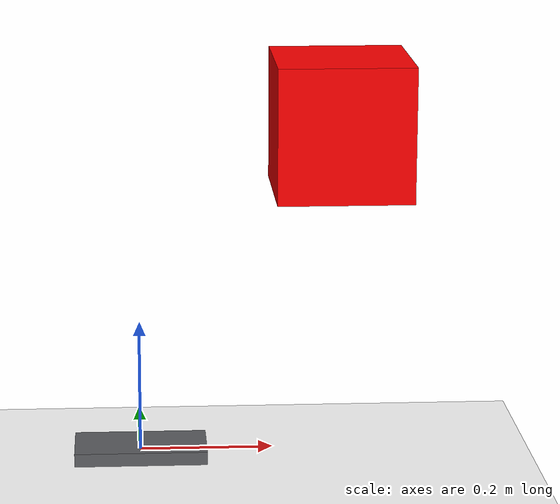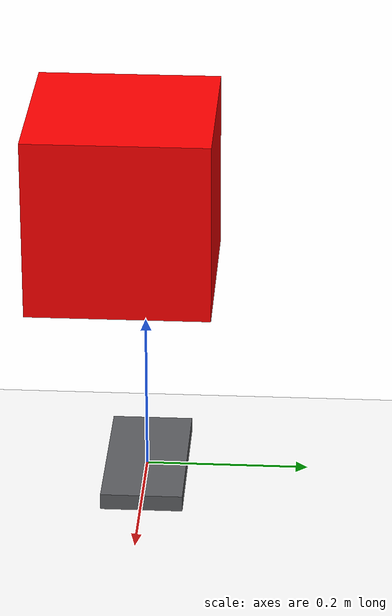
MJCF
<mujoco model="robot">
  <option timestep="0.001" gravity="0 0 -9.81"/>
  <compiler autolimits="true"/>
  <worldbody>
    <light name="top" pos="0 0 1"/>
    <body name="floor" pos="0 0 -0.1">
      <geom size="5.0 5.0 0.02" rgba="1 1 1 1" type="box"/>
    </body>
    <body name="box1" pos="0.3 0 0.5">
      <joint name="box1-joint" type="free"/>
      <geom size="0.1 0.1 0.1" rgba="1 0 0 1" type="box"/>
      <inertial pos="0 0 0" mass="0.001" diaginertia="0.001 0.001 0.001"/>
    </body>
    <body name="griper">
      <inertial pos="0 0 0" mass="0.001" diaginertia="0.001 0.001 0.001"/>
      <joint name="center_z" pos="0 0 0" damping="0.5" axis="0 0 1" type="slide" range="-1.1 1.1"/>
      <joint name="center_y" pos="0 0 0" damping="0.5" axis="0 -1 0" type="slide" range="-1.1 1.1"/>
      <joint name="center_x" pos="0 0 0" damping="0.5" axis="-1 0 0" type="slide" range="-1.1 1.1"/>
      <joint name="roll" pos="0 0 0" damping="0.5" axis="0 0 1" type="hinge" range="-360 360"/>
      <geom size="0.1 0.05 0.01" type="box" rgba="0.356 0.361 0.376 1"/>
    </body>
  </worldbody>
  <actuator>
    <position name="ac_z" joint="center_z"/>
    <position name="ac_y" joint="center_y" />
    <position name="ac_x" joint="center_x" />
    <position name="ac_r" joint="roll" ctrlrange="-3 3" />
  </actuator>
</mujoco>
